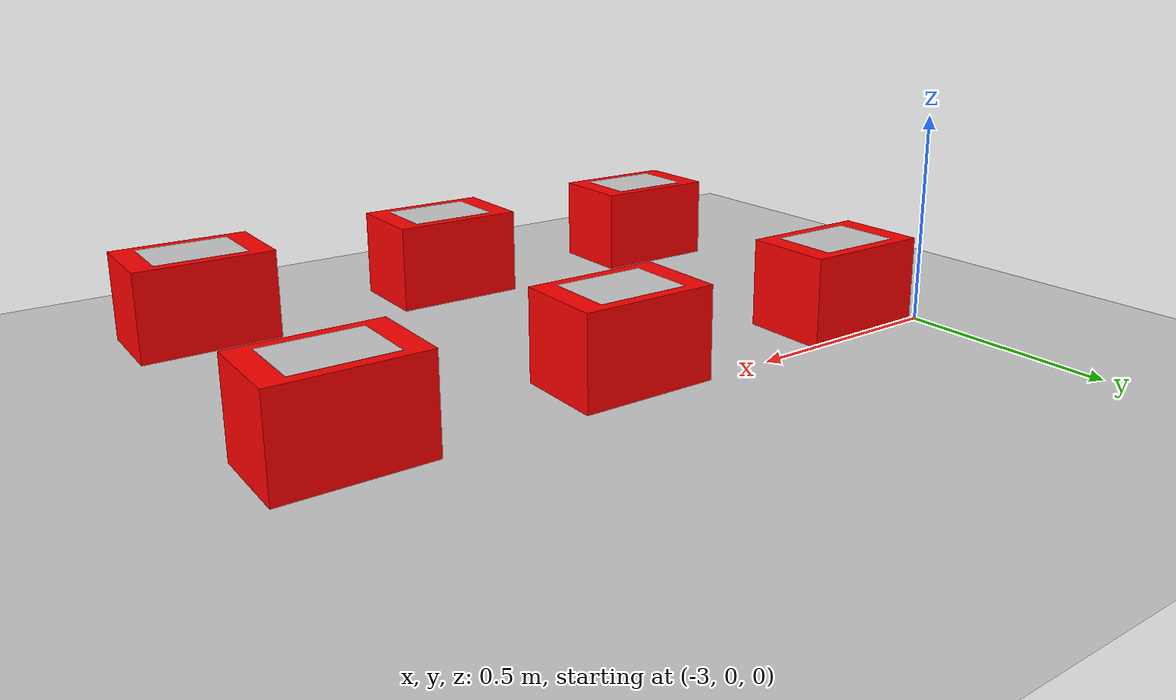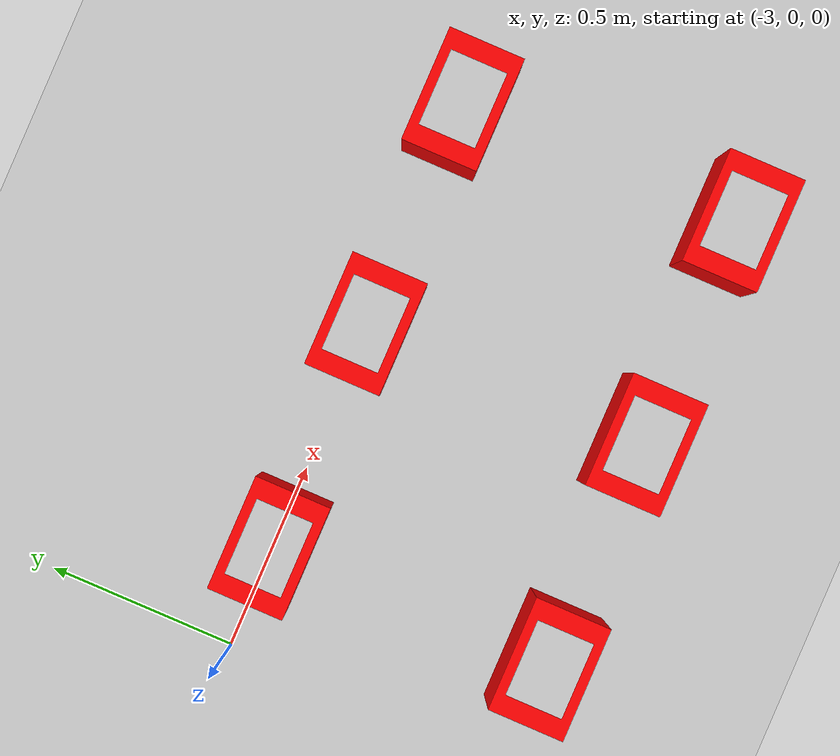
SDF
<?xml version="1.0" ?>
<sdf version='1.4'>
  <world name='default'>

    <physics type='ode'>
      <max_step_size>0.001</max_step_size>
      <real_time_factor>1</real_time_factor>
      <real_time_update_rate>1000</real_time_update_rate>
      <gravity>0 0 -9.8</gravity>
    </physics>

    <spherical_coordinates>
      <surface_model>EARTH_WGS84</surface_model>
      <latitude_deg>0</latitude_deg>
      <longitude_deg>0</longitude_deg>
      <elevation>0</elevation>
      <heading_deg>0</heading_deg>
    </spherical_coordinates>

    <!-- A global light source -->
   <scene>
      <sky>
        <clouds>
          <speed>12</speed>
        </clouds>
      </sky>
      <ambient>0.7 0.7 0.7 1</ambient>
      <background>0.1 0.1 0.1 1</background>
   </scene>

    <include>
      <uri>model://sun</uri>
    </include>

    <include>
      <uri>model://ground_plane</uri>
    </include>

    <model name="red_brick_1-1" >
      <pose>-1.5 0 0.15 1.57 0 1.57</pose>
      <include>
        <uri>model://red_brick</uri>
      </include>
    </model>

    <model name="red_brick_1-2" >
      <pose>-2.1 0 0.15 1.57 0 1.57</pose>
      <include>
        <uri>model://red_brick</uri>
      </include>
    </model>

    <model name="red_brick_1-3" >
      <pose>-2.7 0 0.15 1.57 0 1.57</pose>
      <include>
        <uri>model://red_brick</uri>
      </include>
    </model>

    <model name="red_brick_2-1" >
      <pose>-1.5 -0.75 0.15 1.57 0 1.57</pose>
      <include>
        <uri>model://red_brick</uri>
      </include>
    </model>

    <model name="red_brick_2-2" >
      <pose>-2.1 -0.75 0.15 1.57 0 1.57</pose>
      <include>
        <uri>model://red_brick</uri>
      </include>
    </model>

    <model name="red_brick_2-3" >
      <pose>-2.7 -0.75 0.15 1.57 0 1.57</pose>
      <include>
        <uri>model://red_brick</uri>
      </include>
    </model>

  </world>
</sdf>

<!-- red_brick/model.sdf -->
<sdf version="1.4">
  <model name='red_brick'>
    <pose>0 0 0 0 0 0</pose>
    <static>false</static>
    <link name='object_link'>
      <inertial>
        <mass>0.4744</mass>
        <inertia> <!-- inertias are tricky to compute -->
          <!-- http://gazebosim.org/tutorials?tut=inertia&cat=build_robot -->
          <ixx>0.01079</ixx>       <!-- for a box: ixx = 0.083 * mass * (y*y + z*z) -->
          <ixy>0.0</ixy>         <!-- for a box: ixy = 0 -->
          <ixz>0.0</ixz>         <!-- for a box: ixz = 0 -->
          <iyy>0.01079</iyy>       <!-- for a box: iyy = 0.083 * mass * (x*x + z*z) -->
          <iyz>0.0</iyz>         <!-- for a box: iyz = 0 -->
          <izz>0.00664</izz>       <!-- for a box: izz = 0.083 * mass * (x*x + y*y) -->
        </inertia>
      </inertial>
      <collision name='collision'>
        <geometry>
          <box>
            <size>0.2 0.2 0.3</size>
          </box>
        </geometry>
        <max_contacts>10</max_contacts>
        <surface>
          <friction>
            <ode>
              <mu>1.5</mu>
              <mu2>1.5</mu2>
              <fdir1>1 0 0</fdir1>
            </ode>
          </friction>
          <contact>
            <ode>
              <kp>1400000.0</kp>
              <kd>280.0</kd>
              <max_vel>10.0</max_vel>
              <min_depth>0.00</min_depth>
            </ode>
          </contact>
        </surface>
      </collision>
      <visual name='visual'>
        <cast_shadows>0</cast_shadows>
        <geometry>
          <box>
            <size>0.2 0.2 0.3</size>
          </box>
        </geometry>
        <material>
          <ambient>1.0 0.0 0.0 1</ambient>
          <diffuse>1.0 0.0 0.0 1</diffuse>
          <specular>0.01 0.01 0.01 1</specular>
          <emissive>0 0 0 1</emissive>
        </material>
      </visual>
      <self_collide>0</self_collide>
      <kinematic>0</kinematic>
      <gravity>1</gravity>
    </link>
    <joint name="brick_joint" type="fixed">
      <parent>object_link</parent>
      <child>iron_plate_link</child>
    </joint>
    <link name='iron_plate_link'>
      <pose>0.0 0.1 0 0 0 0</pose>
      <inertial>
        <mass>0.001</mass>
        <inertia> <!-- inertias are tricky to compute -->
          <!-- http://gazebosim.org/tutorials?tut=inertia&cat=build_robot -->
          <ixx>0.00001</ixx>       <!-- for a box: ixx = 0.083 * mass * (y*y + z*z) -->
          <ixy>0.0</ixy>         <!-- for a box: ixy = 0 -->
          <ixz>0.0</ixz>         <!-- for a box: ixz = 0 -->
          <iyy>0.00001</iyy>       <!-- for a box: iyy = 0.083 * mass * (x*x + z*z) -->
          <iyz>0.0</iyz>         <!-- for a box: iyz = 0 -->
          <izz>0.00001</izz>       <!-- for a box: izz = 0.083 * mass * (x*x + y*y) -->
        </inertia>
      </inertial>
      <visual name='visual'>
        <cast_shadows>0</cast_shadows>
        <geometry>
          <box>
            <size>0.15 0.001 0.2</size>
          </box>
        </geometry>
        <material>
          <ambient>0.8 0.8 0.8 1</ambient>
          <diffuse>0.8 0.8 0.8 1</diffuse>
          <specular>0.01 0.01 0.01 1</specular>
          <emissive>0 0 0 1</emissive>
        </material>
      </visual>
      <self_collide>0</self_collide>
      <kinematic>0</kinematic>
      <gravity>1</gravity>
    </link>
  </model>
</sdf>
